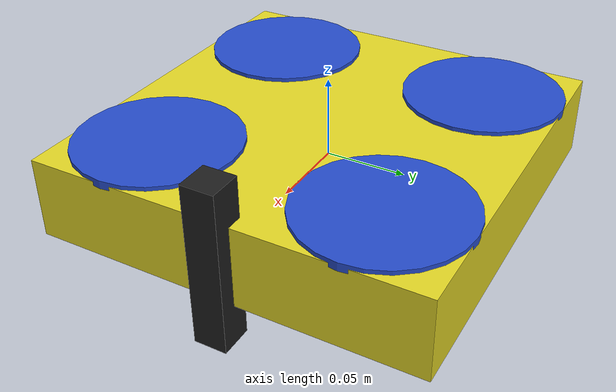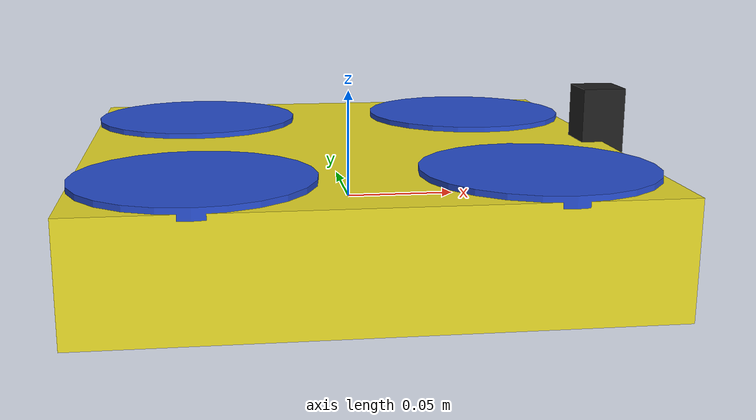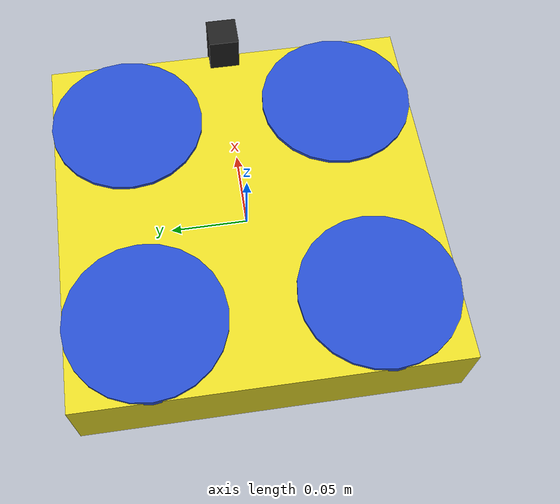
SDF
<?xml version="1.0" ?>
<sdf version="1.6">
  <model name="pollibee_drone">
    <link name="base_link">
      <inertial>
        <mass>0.270</mass>
        <inertia>
          <ixx>0.0002835</ixx>
          <iyy>0.0002835</iyy>
          <izz>0.0005625</izz>
          <ixy>0</ixy>
          <ixz>0</ixz>
          <iyz>0</iyz>
        </inertia>
      </inertial>

      <collision name="collision">
        <geometry>
          <box>
            <size>0.24 0.24 0.05</size>
          </box>
        </geometry>
      </collision>

      <visual name="visual">
        <geometry>
          <box>
            <size>0.24 0.24 0.05</size>
          </box>
        </geometry>
        <material>
          <script>
            <name>Gazebo/Yellow</name>
          </script>
        </material>
      </visual>

      <sensor name="camera" type="camera">
        <pose>0.12 0 0 0 0 0</pose>
        <camera>
          <horizontal_fov>1.085595</horizontal_fov>
          <image>
            <width>640</width>
            <height>480</height>
          </image>
          <clip>
            <near>0.1</near>
            <far>100</far>
          </clip>
        </camera>
        <always_on>1</always_on>
        <update_rate>30</update_rate>
        <visualize>true</visualize>
        <plugin name="camera_controller" filename="libgazebo_ros_camera.so">
          <alwaysOn>true</alwaysOn>
          <updateRate>30.0</updateRate>
          <cameraName>pollibee/camera</cameraName>
          <imageTopicName>image_raw</imageTopicName>
          <cameraInfoTopicName>camera_info</cameraInfoTopicName>
          <frameName>camera_link</frameName>
        </plugin>
      </sensor>
    </link>

    <link name="rotor_0">
      <pose>0.0707 -0.0707 0.025 0 0 0</pose>
      <inertial>
        <mass>0.01</mass>
        <inertia>
          <ixx>0.00001</ixx>
          <iyy>0.00001</iyy>
          <izz>0.00001</izz>
        </inertia>
      </inertial>
      <visual name="rotor_0_visual">
        <geometry>
          <cylinder>
            <radius>0.05</radius>
            <length>0.005</length>
          </cylinder>
        </geometry>
         <material>
          <script>
            <name>Gazebo/Blue</name>
          </script>
        </material>
      </visual>
    </link>

    <link name="rotor_1">
      <pose>-0.0707 0.0707 0.025 0 0 0</pose>
      <inertial>
        <mass>0.01</mass>
        <inertia>
          <ixx>0.00001</ixx>
          <iyy>0.00001</iyy>
          <izz>0.00001</izz>
        </inertia>
      </inertial>
      <visual name="rotor_1_visual">
        <geometry>
          <cylinder>
            <radius>0.05</radius>
            <length>0.005</length>
          </cylinder>
        </geometry>
        <material>
          <script>
            <name>Gazebo/Blue</name>
          </script>
        </material>
      </visual>
    </link>

    <link name="rotor_2">
      <pose>0.0707 0.0707 0.025 0 0 0</pose>
      <inertial>
        <mass>0.01</mass>
        <inertia>
          <ixx>0.00001</ixx>
          <iyy>0.00001</iyy>
          <izz>0.00001</izz>
        </inertia>
      </inertial>
      <visual name="rotor_2_visual">
        <geometry>
          <cylinder>
            <radius>0.05</radius>
            <length>0.005</length>
          </cylinder>
        </geometry>
        <material>
          <script>
            <name>Gazebo/Blue</name>
          </script>
        </material>
      </visual>
    </link>

    <link name="rotor_3">
      <pose>-0.0707 -0.0707 0.025 0 0 0</pose>
      <inertial>
        <mass>0.01</mass>
        <inertia>
          <ixx>0.00001</ixx>
          <iyy>0.00001</iyy>
          <izz>0.00001</izz>
        </inertia>
      </inertial>
      <visual name="rotor_3_visual">
        <geometry>
          <cylinder>
            <radius>0.05</radius>
            <length>0.005</length>
          </cylinder>
        </geometry>
        <material>
          <script>
            <name>Gazebo/Blue</name>
          </script>
        </material>
      </visual>
    </link>

    <joint name="joint_0" type="revolute">
      <pose>0.0707 -0.0707 0.025 0 0 0</pose>
      <child>rotor_0</child>
      <parent>base_link</parent>
      <axis>
        <xyz>0 0 1</xyz>
      </axis>
    </joint>

    <joint name="joint_1" type="revolute">
      <pose>-0.0707 0.0707 0.025 0 0 0</pose>
      <child>rotor_1</child>
      <parent>base_link</parent>
      <axis>
        <xyz>0 0 1</xyz>
      </axis>
    </joint>

    <joint name="joint_2" type="revolute">
      <pose>0.0707 0.0707 0.025 0 0 0</pose>
      <child>rotor_2</child>
      <parent>base_link</parent>
      <axis>
        <xyz>0 0 1</xyz>
      </axis>
    </joint>

    <joint name="joint_3" type="revolute">
      <pose>-0.0707 -0.0707 0.025 0 0 0</pose>
      <child>rotor_3</child>
      <parent>base_link</parent>
      <axis>
        <xyz>0 0 1</xyz>
      </axis>
    </joint>

    <link name="pollination_arm">
      <pose>0.12 0 0 0 0 0</pose>
      <inertial>
        <mass>0.05</mass>
        <inertia>
          <ixx>0.0001</ixx>
          <iyy>0.0001</iyy>
          <izz>0.0001</izz>
 <ixy>0</ixy>
          <ixz>0</ixz>
          <iyz>0</iyz>
        </inertia>
      </inertial>
      <visual name="pollination_arm_visual">
        <geometry>
          <box>
            <size>0.02 0.02 0.1</size>
          </box>
        </geometry>
        <material>
          <script>
            <name>Gazebo/Black</name>
          </script>
        </material>
      </visual>
    </link>

    <joint name="pollination_arm_joint" type="revolute">
      <pose>0.12 0 0 0 0 0</pose>
      <child>pollination_arm</child>
      <parent>base_link</parent>
      <axis>
        <xyz>0 0 1</xyz>
      </axis>
    </joint>

    <plugin name="gazebo_ros_control" filename="libgazebo_ros_control.so">
      <robotNamespace>/</robotNamespace>
    </plugin>

    <plugin name="gazebo_ros_motor" filename="libgazebo_ros_motor.so">
      <robotNamespace>/</robotNamespace>
      <motorName>motor_0</motorName>
      <jointName>joint_0</jointName>
    </plugin>

    <plugin name="gazebo_ros_motor" filename="libgazebo_ros_motor.so">
      <robotNamespace>/</robotNamespace>
      <motorName>motor_1</motorName>
      <jointName>joint_1</jointName>
    </plugin>

    <plugin name="gazebo_ros_motor" filename="libgazebo_ros_motor.so">
      <robotNamespace>/</robotNamespace>
      <motorName>motor_2</motorName>
      <jointName>joint_2</jointName>
    </plugin>

    <plugin name="gazebo_ros_motor" filename="libgazebo_ros_motor.so">
      <robotNamespace>/</robotNamespace>
      <motorName>motor_3</motorName>
      <jointName>joint_3</jointName>
    </plugin>

    <plugin name="gazebo_ros_motor" filename="libgazebo_ros_motor.so">
      <robotNamespace>/</robotNamespace>
      <motorName>pollination_motor</motorName>
      <jointName>pollination_arm_joint</jointName>
    </plugin>
    <!-- Adăugare senzor IMU -->
    <link name="imu_link">
      <sensor name="imu_sensor" type="imu">
        <always_on>1</always_on>
        <update_rate>100</update_rate>
        <visualize>true</visualize>
        <topic>imu</topic>
        <plugin filename="libgazebo_ros_imu_sensor.so" name="imu_plugin">
          <topicName>imu</topicName>
          <bodyName>imu_link</bodyName>
          <updateRateHZ>100.0</updateRateHZ>
          <gaussianNoise>0.0</gaussianNoise>
          <xyzOffset>0 0 0</xyzOffset>
          <rpyOffset>0 0 0</rpyOffset>
          <frameName>imu_link</frameName>
        </plugin>
      </sensor>
    </link>

    <joint name="imu_joint" type="fixed">
      <parent>base_link</parent>
      <child>imu_link</child>
    </joint>

    <!-- Adăugare plugin baterie -->
    <plugin name="battery_plugin" filename="libbattery_plugin.so">
      <ros_node>battery_node</ros_node>
      <link_name>base_link</link_name>
      <battery_name>battery</battery_name>
      <voltage>12.6</voltage>
      <capacity>2200</capacity>
      <discharge_rate>1.0</discharge_rate>
      <charge_rate>0.5</charge_rate>
    </plugin>

  </model>
</sdf>
